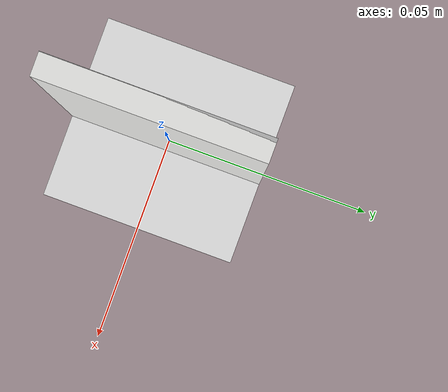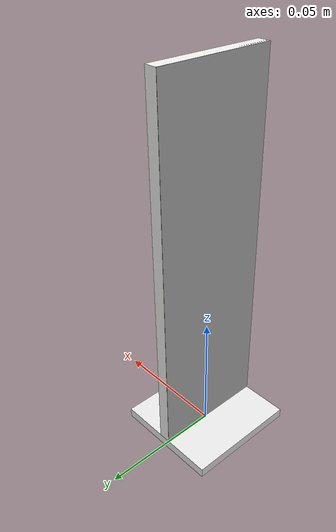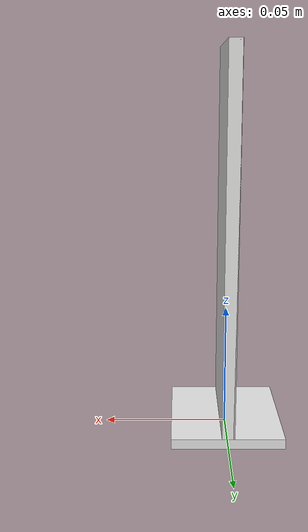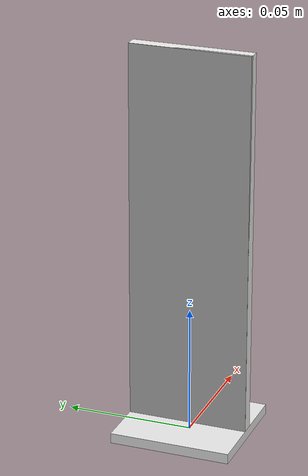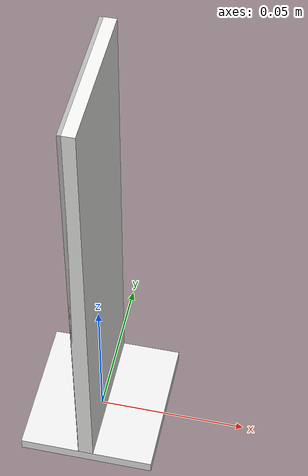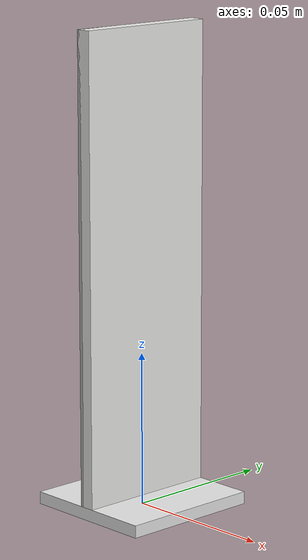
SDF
<?xml version="1.0"?>
<sdf version="1.7">
  <model name="standee_c05">
    <static>true</static>
    <link name="link">
      <visual name="board">
        <pose>0 0 0.0790 0 0 0</pose>
        <geometry><box><size>0.0050 0.0476 0.1500</size></box></geometry>
        <material><ambient>0.94 0.94 0.93 1</ambient><diffuse>0.94 0.94 0.93 1</diffuse></material>
      </visual>
      <visual name="art">
        <pose>-0.0020 0 0.0790 0 0 0</pose>
        <geometry><box><size>0.0012 0.0476 0.1500</size></box></geometry>
        <material>
          <script>
            <uri>model://standee_c05/materials/scripts</uri>
            <uri>model://standee_c05/materials/textures</uri>
            <name>Standee/c05</name>
          </script>
        </material>
      </visual>
      <visual name="base">
        <pose>0 0 0.0020 0 0 0</pose>
        <geometry><box><size>0.0450 0.0476 0.0040</size></box></geometry>
        <material><ambient>0.92 0.92 0.92 1</ambient><diffuse>0.92 0.92 0.92 1</diffuse></material>
      </visual>
      <collision name="col">
        <pose>0 0 0.0790 0 0 0</pose>
        <geometry><box><size>0.0050 0.0500 0.1500</size></box></geometry>
      </collision>
      <collision name="base_c">
        <pose>0 0 0.0020 0 0 0</pose>
        <geometry><box><size>0.0450 0.0476 0.0040</size></box></geometry>
      </collision>
    </link>
  </model>
</sdf>
